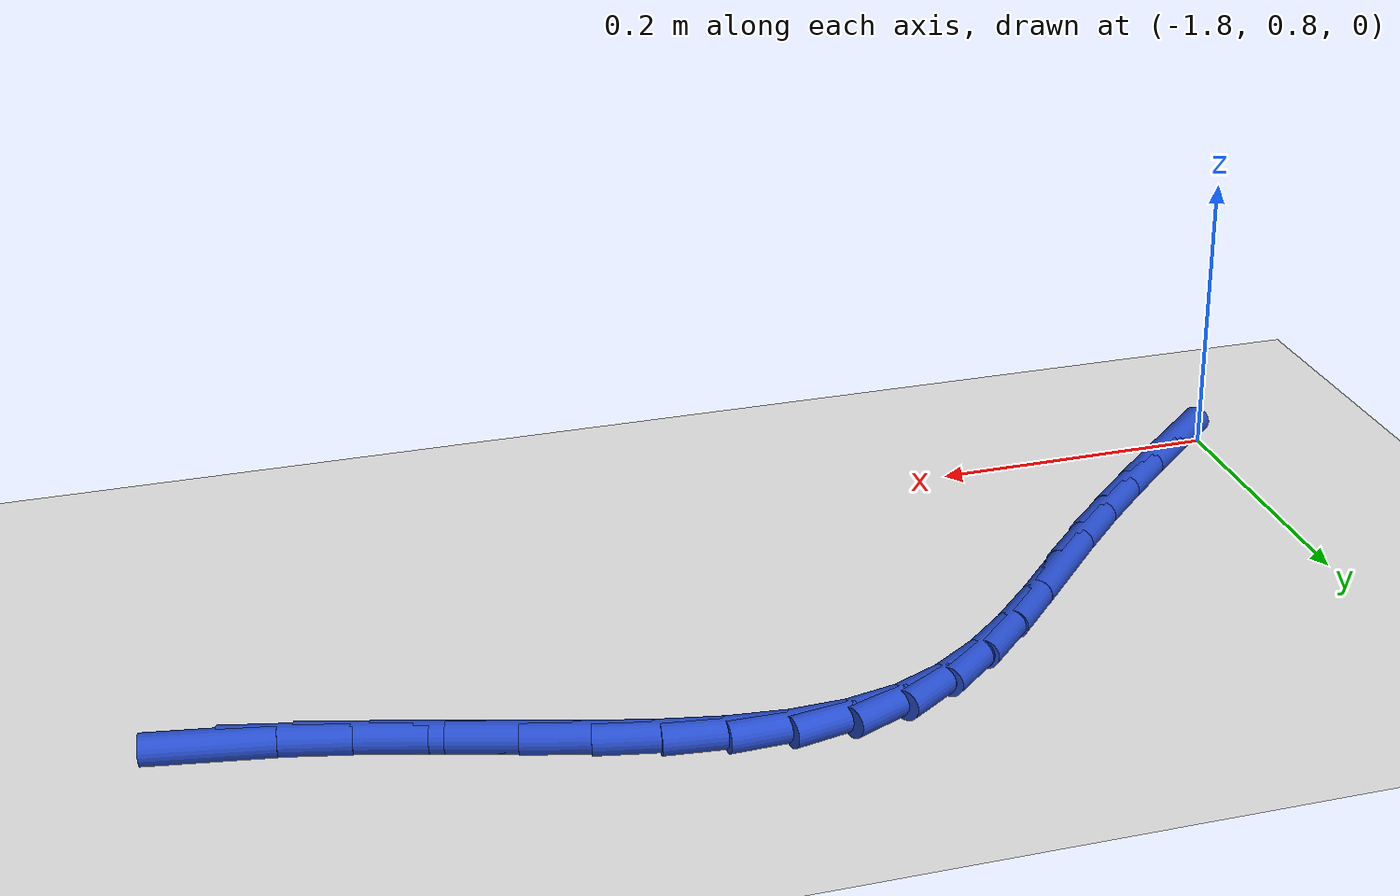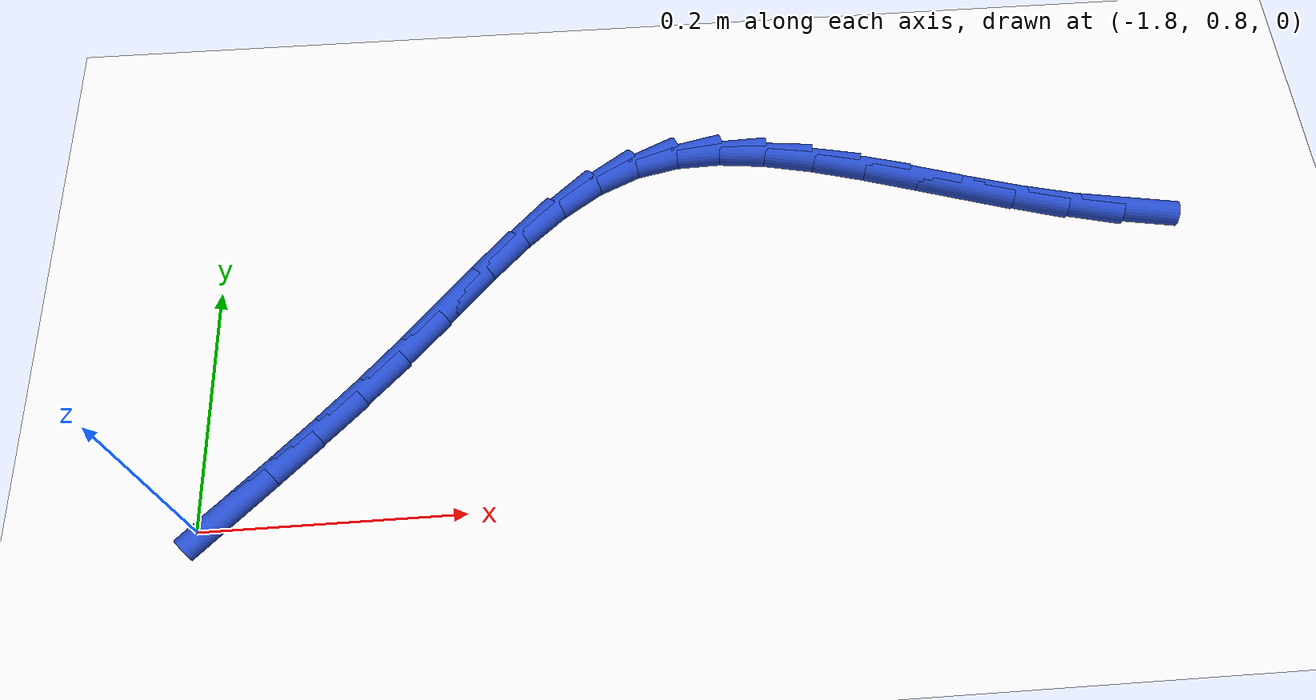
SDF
<sdf version="1.6">
 <world name="default">
  <model name="ground_plane">
   <static>1</static>
   <link name="link">
    <collision name="collision">
     <geometry><plane><normal>0 0 1</normal><size>100 100</size></plane></geometry>
     <surface><friction><ode><mu>100</mu><mu2>50</mu2></ode></friction></surface>
    </collision>
    <visual name="visual">
     <cast_shadows>0</cast_shadows>
     <geometry><plane><normal>0 0 1</normal><size>100 100</size></plane></geometry>
     <material>
      <script><uri>file://media/materials/scripts/gazebo.material</uri><name>Gazebo/WhiteGlow</name></script>
     </material>
    </visual>
   </link>
  </model>
  <model name="line">
   <link name="link_41">
    <pose>-1.0576512013070305 1.0229462137320582 0.01 0 1.57 -0.16826974715867132</pose>
    <collision name="collision">
     <geometry><cylinder><radius>0.01</radius><length>0.08</length></cylinder></geometry>
    </collision>
    <visual name="visual">
     <material>
      <script><name>Gazebo/Blue</name><uri>file://media/materials/scripts/gazebo.material</uri></script>
     </material>
     <geometry><cylinder><radius>0.01</radius><length>0.08</length></cylinder></geometry>
    </visual>
   </link>
   <link name="link_42">
    <pose>-1.101444419306156 1.030385635368277 0.01 0 1.57 -0.2375095524006145</pose>
    <collision name="collision">
     <geometry><cylinder><radius>0.01</radius><length>0.08</length></cylinder></geometry>
    </collision>
    <visual name="visual">
     <material>
      <script><name>Gazebo/Blue</name><uri>file://media/materials/scripts/gazebo.material</uri></script>
     </material>
     <geometry><cylinder><radius>0.01</radius><length>0.08</length></cylinder></geometry>
    </visual>
   </link>
   <link name="link_43">
    <pose>-1.1449693991648742 1.0409221065102345 0.01 0 1.57 -0.2810843573207855</pose>
    <collision name="collision">
     <geometry><cylinder><radius>0.01</radius><length>0.08</length></cylinder></geometry>
    </collision>
    <visual name="visual">
     <material>
      <script><name>Gazebo/Blue</name><uri>file://media/materials/scripts/gazebo.material</uri></script>
     </material>
     <geometry><cylinder><radius>0.01</radius><length>0.08</length></cylinder></geometry>
    </visual>
   </link>
   <link name="link_44">
    <pose>-1.1880521444634573 1.0533613320910835 0.01 0 1.57 -0.30024181852711873</pose>
    <collision name="collision">
     <geometry><cylinder><radius>0.01</radius><length>0.08</length></cylinder></geometry>
    </collision>
    <visual name="visual">
     <material>
      <script><name>Gazebo/Blue</name><uri>file://media/materials/scripts/gazebo.material</uri></script>
     </material>
     <geometry><cylinder><radius>0.01</radius><length>0.08</length></cylinder></geometry>
    </visual>
   </link>
   <link name="link_45">
    <pose>-1.23051865878218 1.0665090170439782 0.01 0 1.57 -0.2949524093925511</pose>
    <collision name="collision">
     <geometry><cylinder><radius>0.01</radius><length>0.08</length></cylinder></geometry>
    </collision>
    <visual name="visual">
     <material>
      <script><name>Gazebo/Blue</name><uri>file://media/materials/scripts/gazebo.material</uri></script>
     </material>
     <geometry><cylinder><radius>0.01</radius><length>0.08</length></cylinder></geometry>
    </visual>
   </link>
   <link name="link_46">
    <pose>-1.272194945701314 1.0791708663020705 0.01 0 1.57 -0.26347055164437866</pose>
    <collision name="collision">
     <geometry><cylinder><radius>0.01</radius><length>0.08</length></cylinder></geometry>
    </collision>
    <visual name="visual">
     <material>
      <script><name>Gazebo/Blue</name><uri>file://media/materials/scripts/gazebo.material</uri></script>
     </material>
     <geometry><cylinder><radius>0.01</radius><length>0.08</length></cylinder></geometry>
    </visual>
   </link>
   <link name="link_47">
    <pose>-1.3129070088011332 1.0901525847985147 0.01 0 1.57 -0.2020689737502055</pose>
    <collision name="collision">
     <geometry><cylinder><radius>0.01</radius><length>0.08</length></cylinder></geometry>
    </collision>
    <visual name="visual">
     <material>
      <script><name>Gazebo/Blue</name><uri>file://media/materials/scripts/gazebo.material</uri></script>
     </material>
     <geometry><cylinder><radius>0.01</radius><length>0.08</length></cylinder></geometry>
    </visual>
   </link>
   <link name="link_48">
    <pose>-1.3524808516619096 1.0982598774664631 0.01 0 1.57 -0.10516210549216867</pose>
    <collision name="collision">
     <geometry><cylinder><radius>0.01</radius><length>0.08</length></cylinder></geometry>
    </collision>
    <visual name="visual">
     <material>
      <script><name>Gazebo/Blue</name><uri>file://media/materials/scripts/gazebo.material</uri></script>
     </material>
     <geometry><cylinder><radius>0.01</radius><length>0.08</length></cylinder></geometry>
    </visual>
   </link>
   <link name="link_49">
    <pose>-1.3907424778639172 1.1022984492390697 0.01 0 1.57 0.03328289000447437</pose>
    <collision name="collision">
     <geometry><cylinder><radius>0.01</radius><length>0.08</length></cylinder></geometry>
    </collision>
    <visual name="visual">
     <material>
      <script><name>Gazebo/Blue</name><uri>file://media/materials/scripts/gazebo.material</uri></script>
     </material>
     <geometry><cylinder><radius>0.01</radius><length>0.08</length></cylinder></geometry>
    </visual>
   </link>
   <link name="link_50">
    <pose>-1.4275178909874298 1.1010740050494876 0.01 0 1.57 0.21536597312415923</pose>
    <collision name="collision">
     <geometry><cylinder><radius>0.01</radius><length>0.08</length></cylinder></geometry>
    </collision>
    <visual name="visual">
     <material>
      <script><name>Gazebo/Blue</name><uri>file://media/materials/scripts/gazebo.material</uri></script>
     </material>
     <geometry><cylinder><radius>0.01</radius><length>0.08</length></cylinder></geometry>
    </visual>
   </link>
   <link name="link_51">
    <pose>-1.4626330946127184 1.0933922498308692 0.01 0 1.57 0.42525330479596446</pose>
    <collision name="collision">
     <geometry><cylinder><radius>0.01</radius><length>0.08</length></cylinder></geometry>
    </collision>
    <visual name="visual">
     <material>
      <script><name>Gazebo/Blue</name><uri>file://media/materials/scripts/gazebo.material</uri></script>
     </material>
     <geometry><cylinder><radius>0.01</radius><length>0.08</length></cylinder></geometry>
    </visual>
   </link>
   <link name="link_52">
    <pose>-1.4959683960452996 1.0782950792674386 0.01 0 1.57 0.5995593160627108</pose>
    <collision name="collision">
     <geometry><cylinder><radius>0.01</radius><length>0.08</length></cylinder></geometry>
    </collision>
    <visual name="visual">
     <material>
      <script><name>Gazebo/Blue</name><uri>file://media/materials/scripts/gazebo.material</uri></script>
     </material>
     <geometry><cylinder><radius>0.01</radius><length>0.08</length></cylinder></geometry>
    </visual>
   </link>
   <link name="link_53">
    <pose>-1.527798444963173 1.0565395572150778 0.01 0 1.57 0.7183330386621934</pose>
    <collision name="collision">
     <geometry><cylinder><radius>0.01</radius><length>0.08</length></cylinder></geometry>
    </collision>
    <visual name="visual">
     <material>
      <script><name>Gazebo/Blue</name><uri>file://media/materials/scripts/gazebo.material</uri></script>
     </material>
     <geometry><cylinder><radius>0.01</radius><length>0.08</length></cylinder></geometry>
    </visual>
   </link>
   <link name="link_54">
    <pose>-1.5585719355098746 1.0296397433499664 0.01 0 1.57 0.7913349928397684</pose>
    <collision name="collision">
     <geometry><cylinder><radius>0.01</radius><length>0.08</length></cylinder></geometry>
    </collision>
    <visual name="visual">
     <material>
      <script><name>Gazebo/Blue</name><uri>file://media/materials/scripts/gazebo.material</uri></script>
     </material>
     <geometry><cylinder><radius>0.01</radius><length>0.08</length></cylinder></geometry>
    </visual>
   </link>
   <link name="link_55">
    <pose>-1.5887383265448374 0.9991130234335746 0.01 0 1.57 0.8273161313582819</pose>
    <collision name="collision">
     <geometry><cylinder><radius>0.01</radius><length>0.08</length></cylinder></geometry>
    </collision>
    <visual name="visual">
     <material>
      <script><name>Gazebo/Blue</name><uri>file://media/materials/scripts/gazebo.material</uri></script>
     </material>
     <geometry><cylinder><radius>0.01</radius><length>0.08</length></cylinder></geometry>
    </visual>
   </link>
   <link name="link_56">
    <pose>-1.6187470769274908 0.966476783227372 0.01 0 1.57 0.8314517541729631</pose>
    <collision name="collision">
     <geometry><cylinder><radius>0.01</radius><length>0.08</length></cylinder></geometry>
    </collision>
    <visual name="visual">
     <material>
      <script><name>Gazebo/Blue</name><uri>file://media/materials/scripts/gazebo.material</uri></script>
     </material>
     <geometry><cylinder><radius>0.01</radius><length>0.08</length></cylinder></geometry>
    </visual>
   </link>
   <link name="link_57">
    <pose>-1.6490476455172673 0.9332484084928288 0.01 0 1.57 0.8074483909060773</pose>
    <collision name="collision">
     <geometry><cylinder><radius>0.01</radius><length>0.08</length></cylinder></geometry>
    </collision>
    <visual name="visual">
     <material>
      <script><name>Gazebo/Blue</name><uri>file://media/materials/scripts/gazebo.material</uri></script>
     </material>
     <geometry><cylinder><radius>0.01</radius><length>0.08</length></cylinder></geometry>
    </visual>
   </link>
   <link name="link_58">
    <pose>-1.6800480533704152 0.9008498115470106 0.01 0 1.57 0.77779660216226</pose>
    <collision name="collision">
     <geometry><cylinder><radius>0.01</radius><length>0.08</length></cylinder></geometry>
    </collision>
    <visual name="visual">
     <material>
      <script><name>Gazebo/Blue</name><uri>file://media/materials/scripts/gazebo.material</uri></script>
     </material>
     <geometry><cylinder><radius>0.01</radius><length>0.08</length></cylinder></geometry>
    </visual>
   </link>
   <link name="link_59">
    <pose>-1.7117072730268945 0.8696682888427245 0.01 0 1.57 0.7566093332842295</pose>
    <collision name="collision">
     <geometry><cylinder><radius>0.01</radius><length>0.08</length></cylinder></geometry>
    </collision>
    <visual name="visual">
     <material>
      <script><name>Gazebo/Blue</name><uri>file://media/materials/scripts/gazebo.material</uri></script>
     </material>
     <geometry><cylinder><radius>0.01</radius><length>0.08</length></cylinder></geometry>
    </visual>
   </link>
   <link name="link_60">
    <pose>-1.7437093609785308 0.839457725309461 0.01 0 1.57 0.7442930705417481</pose>
    <collision name="collision">
     <geometry><cylinder><radius>0.01</radius><length>0.08</length></cylinder></geometry>
    </collision>
    <visual name="visual">
     <material>
      <script><name>Gazebo/Blue</name><uri>file://media/materials/scripts/gazebo.material</uri></script>
     </material>
     <geometry><cylinder><radius>0.01</radius><length>0.08</length></cylinder></geometry>
    </visual>
   </link>
   <link name="link_61">
    <pose>-1.7757344127769756 0.8099628797992582 0.01 0 1.57 0.7410948379504708</pose>
    <collision name="collision">
     <geometry><cylinder><radius>0.01</radius><length>0.08</length></cylinder></geometry>
    </collision>
    <visual name="visual">
     <material>
      <script><name>Gazebo/Blue</name><uri>file://media/materials/scripts/gazebo.material</uri></script>
     </material>
     <geometry><cylinder><radius>0.01</radius><length>0.08</length></cylinder></geometry>
    </visual>
   </link>
  </model>
 </world>
</sdf>
